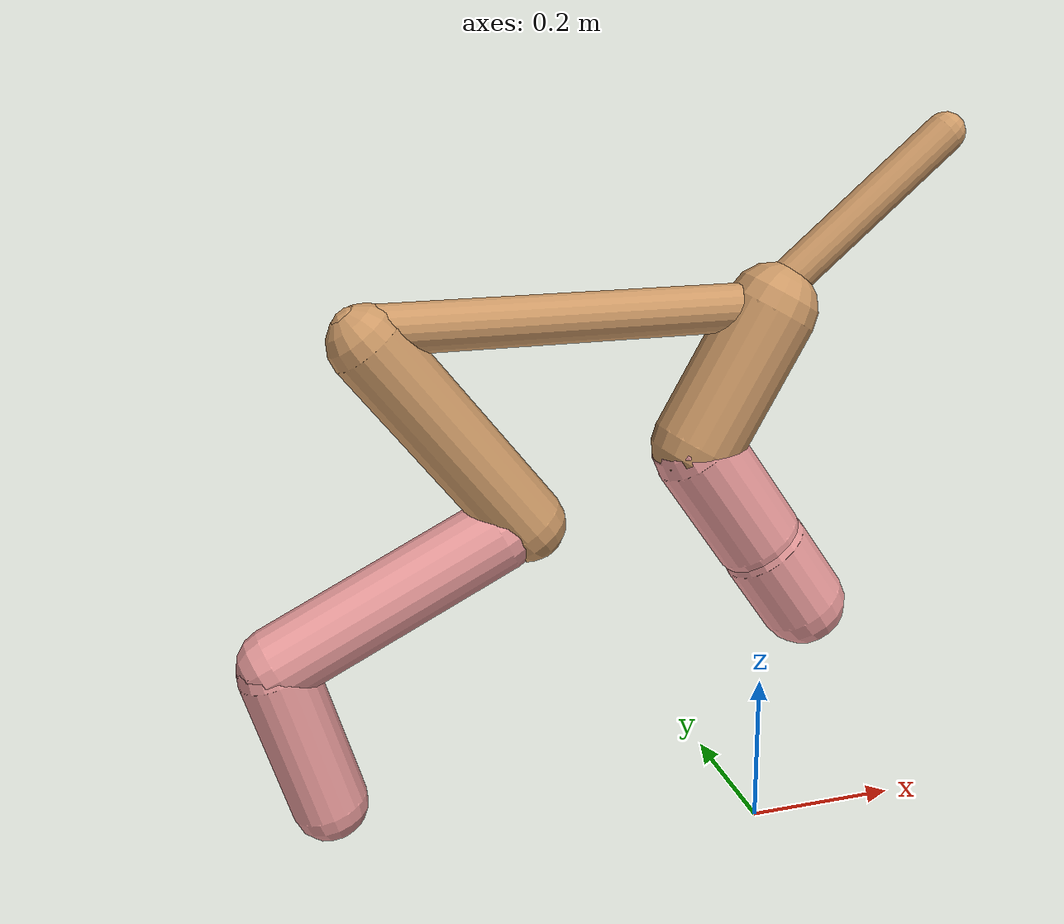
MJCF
<mujoco model="cheetah">
  <compiler angle="radian" coordinate="local" inertiafromgeom="true" settotalmass="14" />
  <default>
    <joint armature=".1" damping=".01" limited="true" solimplimit="0 .8 .03" solreflimit=".02 1" stiffness="8" />
    <geom conaffinity="0" condim="3" contype="1" friction="0.8 .1 .1" rgba="0.8 0.6 .4 1" solimp="0.0 0.8 0.01" solref="0.02 1" />
    <motor ctrllimited="true" ctrlrange="-1 1" />
  </default>
  <size nstack="300000" nuser_geom="1" />
  <option gravity="0 0 -9.81" timestep="0.01" />
  <worldbody>
    <body name="torso" pos="0.0 0.0 0.7021196476374721">
      <joint armature="0" axis="1 0 0" damping="0" limited="false" name="ignorex" pos="0 0 0" stiffness="0" type="slide" />
      <joint armature="0" axis="0 0 1" damping="0" limited="false" name="ignorez" pos="0 0 0" stiffness="0" type="slide" />
      <joint armature="0" axis="0 1 0" damping="0" limited="false" name="ignorey" pos="0 0 0" stiffness="0" type="hinge" />
      <geom fromto="-0.5 0.0 0.0 7.654770284087897e-05 0.0 0.0" name="torso" size="0.02917643869272935" type="capsule" />
      <geom axisangle="0 1 0 .87" name="head" pos="0.1000765477028408 0.0 0.1" size="0.02488020064236346 0.15" type="capsule" />

      <body name="bthigh" pos="-.5 0 0">
        <joint axis="0 1 0" damping="6" name="bthigh" pos="0 0 0" range="-.52 1.05" stiffness="240" type="hinge" />
        <geom axisangle="0 1 0 -3.8" name="bthigh" pos="0.10015880842050644 0.0 -0.13020645094665836" size="0.04651256438556026 0.14526046517579105" type="capsule" />
        <body name="bshin" pos="0.16031761684101287 0.0 -0.2504129018933167">
          <joint axis="0 1 0" damping="4.5" name="bshin" pos="0 0 0" range="-.785 .785" stiffness="180" type="hinge" />
          <geom axisangle="0 1 0 -2.03" name="bshin" pos="-0.14024100048503738 0.0 -0.07012050024251869" rgba="0.9 0.6 0.6 1" size="0.04651256438556026 0.15026944673357695" type="capsule" />
          <body name="bfoot" pos="-0.28048200097007475 0.0 -0.14024100048503738">
            <joint axis="0 1 0" damping="3" name="bfoot" pos="0 0 0" range="-.4 .785" stiffness="120" type="hinge" />
            <geom axisangle="0 1 0 -.27" name="bfoot" pos="0.030049891033739673 0.0 -0.09716131434242495" rgba="0.9 0.6 0.6 1" size="0.04651256438556026 0.09416885328637489" type="capsule" />
            <inertial mass="10" />
          </body>
        </body>
      </body>
      <body name="fthigh" pos="7.654770284082346e-05 0.0 0.0">
        <joint axis="0 1 0" damping="4.5" name="fthigh" pos="0 0 0" range="-1.5 0.8" stiffness="180" type="hinge" />
        <geom axisangle="0 1 0 .52" name="fthigh" pos="-0.04989554608158897 0.0 -0.0855352218541525" size="0.056547109239179515 0.0931" type="capsule" />
        <body name="fshin" pos="-0.09979109216317794 0.0 -0.171070443708305">
          <joint axis="0 1 0" damping="3" name="fshin" pos="0 0 0" range="-1.2 1.1" stiffness="120" type="hinge" />
          <geom axisangle="0 1 0 -.6" name="fshin" pos="0.046381400387749405 0.0 -0.06422040053688378" rgba="0.9 0.6 0.6 1" size="0.056547109239179515 0.07419999999999999" type="capsule" />
          <body name="ffoot" pos="0.09276280077549881 0.0 -0.12844080107376757">
            <joint axis="0 1 0" damping="1.5" name="ffoot" pos="0 0 0" range="-3.1 -0.3" stiffness="60" type="hinge" />
            <geom axisangle="0 1 0 -.6" name="ffoot" pos="0.033644090582416526 0.0 -0.05233525201709238" rgba="0.9 0.6 0.6 1" size="0.056547109239179515 0.049" type="capsule" />
            <inertial mass="10" />
          </body>
        </body>
      </body>
    </body>
  </worldbody>
  <actuator>
    <motor gear="120" joint="bthigh" name="bthigh" />
    <motor gear="90" joint="bshin" name="bshin" />
    <motor gear="60" joint="bfoot" name="bfoot" />
    <motor gear="120" joint="fthigh" name="fthigh" />
    <motor gear="60" joint="fshin" name="fshin" />
    <motor gear="30" joint="ffoot" name="ffoot" />
  </actuator>
</mujoco>
